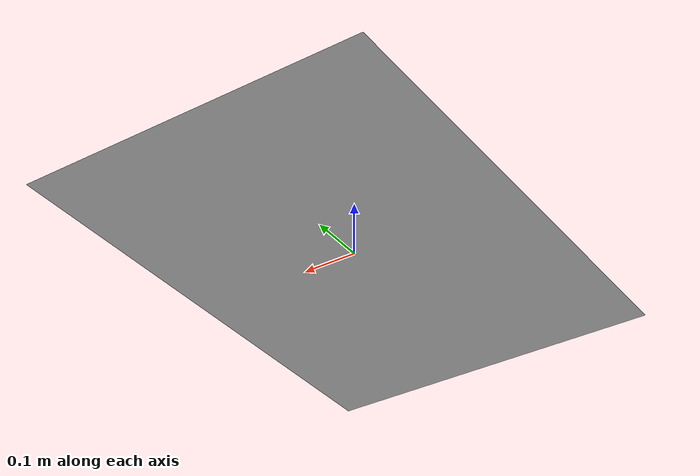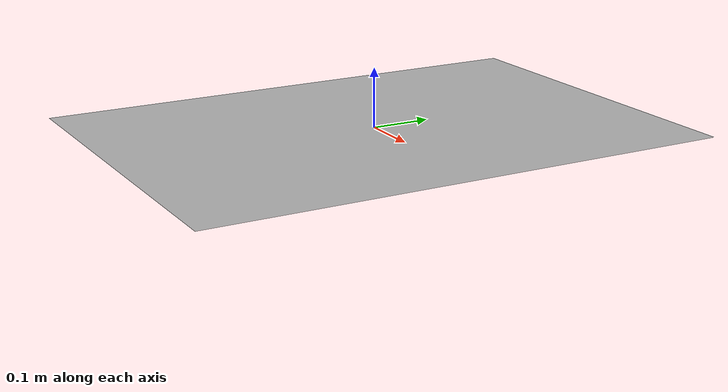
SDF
<?xml version="1.0" ?>
<sdf version="1.5">
  <model name="linefollower_samplecourse">
    <link name="link">
      <collision name="collision">
        <pose>0 0 0 0 0 0</pose>
        <geometry>
          <mesh>
            <uri>model://linefollower_samplecourse/meshes/linefollower_samplecourse.dae</uri>
            <scale>1 1 1</scale>
          </mesh>
        </geometry>
        <surface>
          <friction>
            <ode>
              <mu>0.9</mu>
              <mu2>0.9</mu2>
            </ode>
          </friction>
        </surface>
      </collision>
      <visual name="visual">
        <pose>0 0 0 0 0 0</pose>
        <geometry>
          <mesh>
            <uri>model://linefollower_samplecourse/meshes/linefollower_samplecourse.dae</uri>
            <scale>1 1 1</scale>
          </mesh>
        </geometry>
      </visual>
    </link>
  </model>
</sdf>
